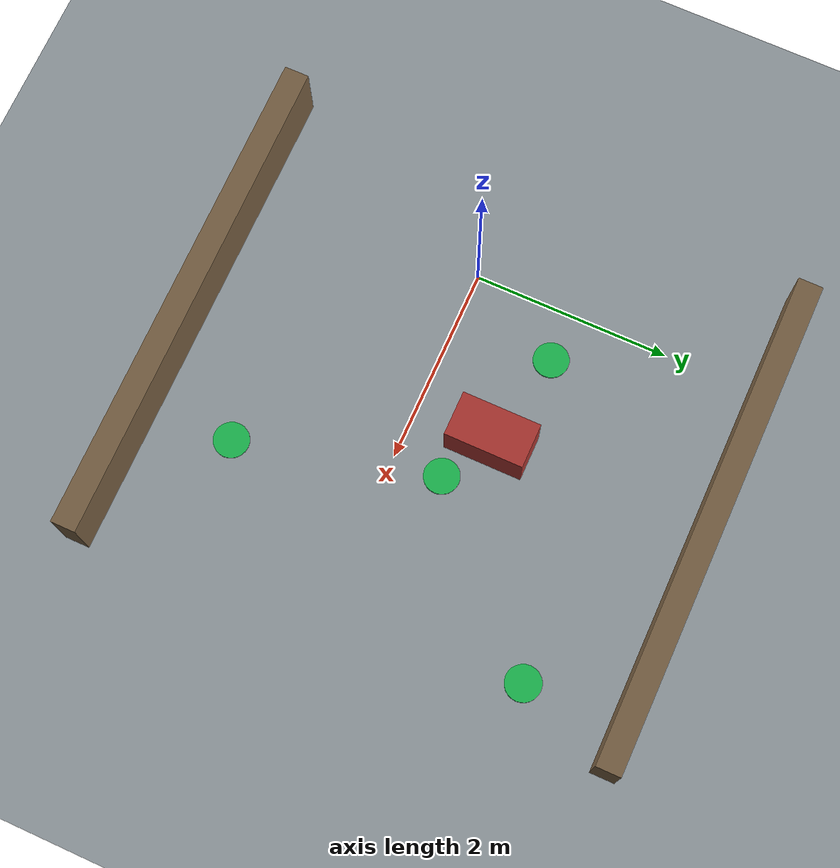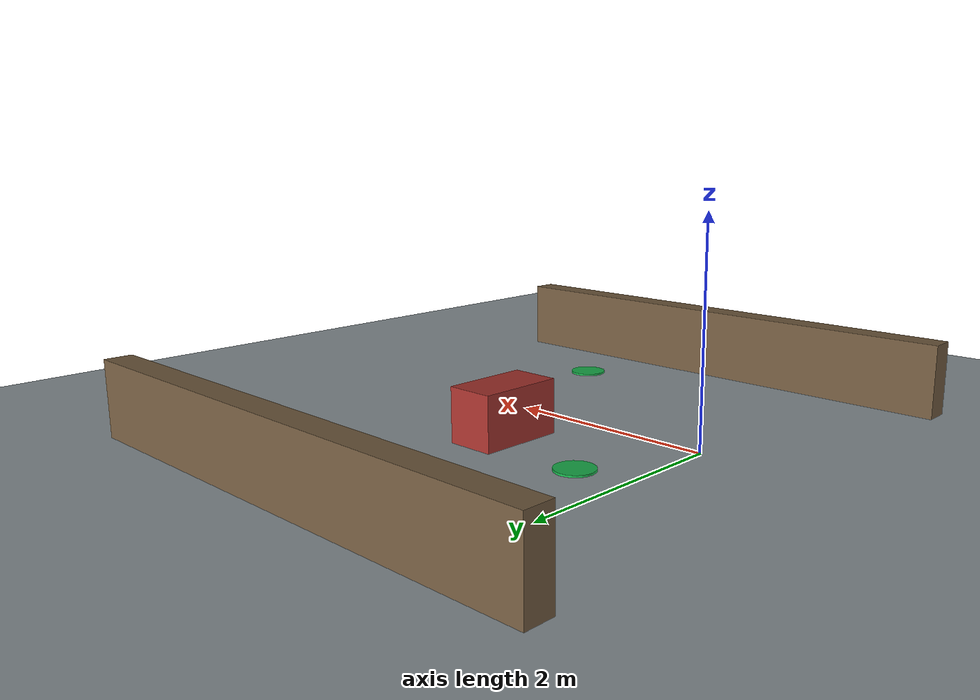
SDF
<?xml version="1.0"?>
<sdf version="1.9">
  <world name="coordination_arena">
    <physics name="1ms" type="ignored">
      <max_step_size>0.001</max_step_size>
      <real_time_factor>1.0</real_time_factor>
    </physics>

    <plugin filename="gz-sim-physics-system" name="gz::sim::systems::Physics"/>
    <plugin filename="gz-sim-user-commands-system" name="gz::sim::systems::UserCommands"/>
    <plugin filename="gz-sim-scene-broadcaster-system" name="gz::sim::systems::SceneBroadcaster"/>

    <light name="sun" type="directional">
      <cast_shadows>true</cast_shadows>
      <pose>0 0 8 0 0 0</pose>
      <diffuse>0.8 0.8 0.8 1</diffuse>
      <specular>0.2 0.2 0.2 1</specular>
      <direction>-0.5 0.1 -0.9</direction>
    </light>

    <model name="ground_plane">
      <static>true</static>
      <link name="link">
        <collision name="collision">
          <geometry>
            <plane>
              <normal>0 0 1</normal>
              <size>12 8</size>
            </plane>
          </geometry>
        </collision>
        <visual name="visual">
          <geometry>
            <plane>
              <normal>0 0 1</normal>
              <size>12 8</size>
            </plane>
          </geometry>
          <material>
            <ambient>0.55 0.58 0.60 1</ambient>
            <diffuse>0.55 0.58 0.60 1</diffuse>
          </material>
        </visual>
      </link>
    </model>

    <model name="loading_bay_marker">
      <static>true</static>
      <pose>2.0 0.5 0.01 0 0 0</pose>
      <link name="link">
        <visual name="visual">
          <geometry>
            <cylinder>
              <radius>0.18</radius>
              <length>0.02</length>
            </cylinder>
          </geometry>
          <material>
            <ambient>0.1 0.7 0.3 1</ambient>
            <diffuse>0.1 0.7 0.3 1</diffuse>
          </material>
        </visual>
      </link>
    </model>

    <model name="north_aisle_marker">
      <static>true</static>
      <pose>3.5 2.0 0.01 0 0 0</pose>
      <link name="link">
        <visual name="visual">
          <geometry>
            <cylinder>
              <radius>0.18</radius>
              <length>0.02</length>
            </cylinder>
          </geometry>
          <material>
            <ambient>0.1 0.7 0.3 1</ambient>
            <diffuse>0.1 0.7 0.3 1</diffuse>
          </material>
        </visual>
      </link>
    </model>

    <model name="south_aisle_marker">
      <static>true</static>
      <pose>2.5 -1.5 0.01 0 0 0</pose>
      <link name="link">
        <visual name="visual">
          <geometry>
            <cylinder>
              <radius>0.18</radius>
              <length>0.02</length>
            </cylinder>
          </geometry>
          <material>
            <ambient>0.1 0.7 0.3 1</ambient>
            <diffuse>0.1 0.7 0.3 1</diffuse>
          </material>
        </visual>
      </link>
    </model>

    <model name="staging_marker">
      <static>true</static>
      <pose>0.5 1.0 0.01 0 0 0</pose>
      <link name="link">
        <visual name="visual">
          <geometry>
            <cylinder>
              <radius>0.18</radius>
              <length>0.02</length>
            </cylinder>
          </geometry>
          <material>
            <ambient>0.1 0.7 0.3 1</ambient>
            <diffuse>0.1 0.7 0.3 1</diffuse>
          </material>
        </visual>
      </link>
    </model>

    <model name="aisle_rack_left">
      <static>true</static>
      <pose>1.5 3.0 0.35 0 0 0</pose>
      <link name="link">
        <collision name="collision">
          <geometry>
            <box>
              <size>5.0 0.25 0.7</size>
            </box>
          </geometry>
        </collision>
        <visual name="visual">
          <geometry>
            <box>
              <size>5.0 0.25 0.7</size>
            </box>
          </geometry>
          <material>
            <ambient>0.45 0.36 0.25 1</ambient>
            <diffuse>0.45 0.36 0.25 1</diffuse>
          </material>
        </visual>
      </link>
    </model>

    <model name="aisle_rack_right">
      <static>true</static>
      <pose>1.5 -2.4 0.35 0 0 0</pose>
      <link name="link">
        <collision name="collision">
          <geometry>
            <box>
              <size>5.0 0.25 0.7</size>
            </box>
          </geometry>
        </collision>
        <visual name="visual">
          <geometry>
            <box>
              <size>5.0 0.25 0.7</size>
            </box>
          </geometry>
          <material>
            <ambient>0.45 0.36 0.25 1</ambient>
            <diffuse>0.45 0.36 0.25 1</diffuse>
          </material>
        </visual>
      </link>
    </model>

    <model name="center_obstacle">
      <static>true</static>
      <pose>1.5 0.8 0.25 0 0 0</pose>
      <link name="link">
        <collision name="collision">
          <geometry>
            <box>
              <size>0.45 0.8 0.5</size>
            </box>
          </geometry>
        </collision>
        <visual name="visual">
          <geometry>
            <box>
              <size>0.45 0.8 0.5</size>
            </box>
          </geometry>
          <material>
            <ambient>0.65 0.2 0.18 1</ambient>
            <diffuse>0.65 0.2 0.18 1</diffuse>
          </material>
        </visual>
      </link>
    </model>
  </world>
</sdf>
